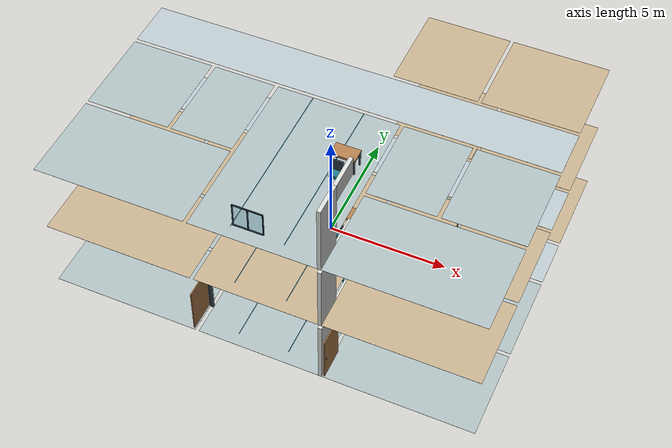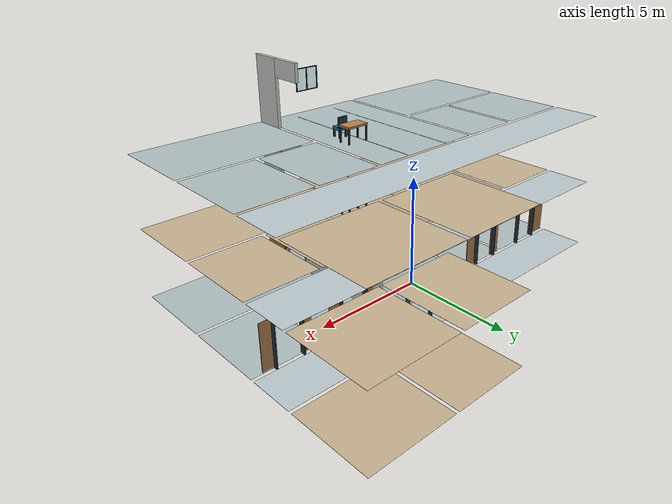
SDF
<sdf version="1.6">
 <world name="three_floor">
  <model name="f1_wall_016">
   <static>true</static>
   <pose>2.6 -6.15 1.5 0 0 0</pose>
   <link name="f1_wall_016_link">
    <collision name="f1_wall_016_collision"><geometry><box><size>0.15 1.3 3</size></box></geometry></collision>
    <visual name="f1_wall_016_visual">
     <geometry><box><size>0.15 1.3 3</size></box></geometry>
     <material><ambient>.84 .85 .83 1</ambient><diffuse>.84 .85 .83 1</diffuse></material>
    </visual>
   </link>
  </model>
  <model name="f1_wall_017">
   <static>true</static>
   <pose>2.6 -1.65 1.5 0 0 0</pose>
   <link name="f1_wall_017_link">
    <collision name="f1_wall_017_collision"><geometry><box><size>0.15 4.9 3</size></box></geometry></collision>
    <visual name="f1_wall_017_visual">
     <geometry><box><size>0.15 4.9 3</size></box></geometry>
     <material><ambient>.84 .85 .83 1</ambient><diffuse>.84 .85 .83 1</diffuse></material>
    </visual>
   </link>
  </model>
  <model name="f1_lintel_shared_east">
   <static>true</static>
   <pose>2.6 -4.8 2.6 0 0 0</pose>
   <link name="f1_lintel_shared_east_link">
    <collision name="f1_lintel_shared_east_collision">
     <geometry><box><size>0.15 1.4 0.8</size></box></geometry>
    </collision>
    <visual name="f1_lintel_shared_east_visual">
     <geometry><box><size>0.15 1.4 0.8</size></box></geometry>
     <material><ambient>.84 .85 .83 1</ambient><diffuse>.84 .85 .83 1</diffuse></material>
    </visual>
   </link>
  </model>
  <model name="f2_wall_016">
   <static>true</static>
   <pose>2.6 -6.15 4.7 0 0 0</pose>
   <link name="f2_wall_016_link">
    <collision name="f2_wall_016_collision"><geometry><box><size>0.15 1.3 3</size></box></geometry></collision>
    <visual name="f2_wall_016_visual">
     <geometry><box><size>0.15 1.3 3</size></box></geometry>
     <material><ambient>.84 .85 .83 1</ambient><diffuse>.84 .85 .83 1</diffuse></material>
    </visual>
   </link>
  </model>
  <model name="f2_lintel_shared_east">
   <static>true</static>
   <pose>2.6 -4.8 5.8 0 0 0</pose>
   <link name="f2_lintel_shared_east_link">
    <collision name="f2_lintel_shared_east_collision">
     <geometry><box><size>0.15 1.4 0.8</size></box></geometry>
    </collision>
    <visual name="f2_lintel_shared_east_visual">
     <geometry><box><size>0.15 1.4 0.8</size></box></geometry>
     <material><ambient>.84 .85 .83 1</ambient><diffuse>.84 .85 .83 1</diffuse></material>
    </visual>
   </link>
  </model>
  <model name="f3_wall_016">
   <static>true</static>
   <pose>2.6 -6.15 7.9 0 0 0</pose>
   <link name="f3_wall_016_link">
    <collision name="f3_wall_016_collision"><geometry><box><size>0.15 1.3 3</size></box></geometry></collision>
    <visual name="f3_wall_016_visual">
     <geometry><box><size>0.15 1.3 3</size></box></geometry>
     <material><ambient>.84 .85 .83 1</ambient><diffuse>.84 .85 .83 1</diffuse></material>
    </visual>
   </link>
  </model>
  <model name="f3_lintel_shared_east">
   <static>true</static>
   <pose>2.6 -4.8 9 0 0 0</pose>
   <link name="f3_lintel_shared_east_link">
    <collision name="f3_lintel_shared_east_collision">
     <geometry><box><size>0.15 1.4 0.8</size></box></geometry>
    </collision>
    <visual name="f3_lintel_shared_east_visual">
     <geometry><box><size>0.15 1.4 0.8</size></box></geometry>
     <material><ambient>.84 .85 .83 1</ambient><diffuse>.84 .85 .83 1</diffuse></material>
    </visual>
   </link>
  </model>
  <model name="f3_s2_window_33">
   <static>true</static>
   <pose>0 -6.9 7.875 0 0 0</pose>
   <link name="f3_s2_window_33_link">
    <collision name="f3_s2_window_33_link_glass_collision">
     <geometry><box><size>1.2 0.045 1.05</size></box></geometry>
    </collision>
    <visual name="f3_s2_window_33_link_glass_visual">
     <geometry><box><size>1.2 0.045 1.05</size></box></geometry>
     <material><ambient>0.44 0.76 0.83 1</ambient><diffuse>0.44 0.76 0.83 1</diffuse></material>
     <transparency>0.65</transparency>
    </visual>
    <collision name="f3_s2_window_33_link_mullion_-0.58_collision">
     <pose>-0.58 0 0 0 0 0</pose>
     <geometry><box><size>0.035 0.045 1.05</size></box></geometry>
    </collision>
    <visual name="f3_s2_window_33_link_mullion_-0.58_visual">
     <pose>-0.58 0 0 0 0 0</pose>
     <geometry><box><size>0.035 0.045 1.05</size></box></geometry>
     <material><ambient>0.15 0.2 0.24 1</ambient><diffuse>0.15 0.2 0.24 1</diffuse></material>
    </visual>
    <collision name="f3_s2_window_33_link_mullion_0.58_collision">
     <pose>0.58 0 0 0 0 0</pose>
     <geometry><box><size>0.035 0.045 1.05</size></box></geometry>
    </collision>
    <visual name="f3_s2_window_33_link_mullion_0.58_visual">
     <pose>0.58 0 0 0 0 0</pose>
     <geometry><box><size>0.035 0.045 1.05</size></box></geometry>
     <material><ambient>0.15 0.2 0.24 1</ambient><diffuse>0.15 0.2 0.24 1</diffuse></material>
    </visual>
    <collision name="f3_s2_window_33_link_mullion_0_collision">
     <geometry><box><size>0.035 0.045 1.05</size></box></geometry>
    </collision>
    <visual name="f3_s2_window_33_link_mullion_0_visual">
     <geometry><box><size>0.035 0.045 1.05</size></box></geometry>
     <material><ambient>0.15 0.2 0.24 1</ambient><diffuse>0.15 0.2 0.24 1</diffuse></material>
    </visual>
    <collision name="f3_s2_window_33_link_frame_-0.51_collision">
     <pose>0 0 -0.51 0 0 0</pose>
     <geometry><box><size>1.2 0.045 0.03</size></box></geometry>
    </collision>
    <visual name="f3_s2_window_33_link_frame_-0.51_visual">
     <pose>0 0 -0.51 0 0 0</pose>
     <geometry><box><size>1.2 0.045 0.03</size></box></geometry>
     <material><ambient>0.15 0.2 0.24 1</ambient><diffuse>0.15 0.2 0.24 1</diffuse></material>
    </visual>
    <collision name="f3_s2_window_33_link_frame_0.51_collision">
     <pose>0 0 0.51 0 0 0</pose>
     <geometry><box><size>1.2 0.045 0.03</size></box></geometry>
    </collision>
    <visual name="f3_s2_window_33_link_frame_0.51_visual">
     <pose>0 0 0.51 0 0 0</pose>
     <geometry><box><size>1.2 0.045 0.03</size></box></geometry>
     <material><ambient>0.15 0.2 0.24 1</ambient><diffuse>0.15 0.2 0.24 1</diffuse></material>
    </visual>
   </link>
  </model>
  <model name="f1_s2_finishes">
   <static>true</static>
   <link name="f1_s2_finishes_link">
    <visual name="f1_s2_finishes_link_shared_visual">
     <pose>0 -3.0375 0.011 0 0 0</pose>
     <geometry><box><size>5.05 7.525 0.002</size></box></geometry>
     <material><ambient>0.67 0.73 0.74 1</ambient><diffuse>0.67 0.73 0.74 1</diffuse></material>
    </visual>
    <visual name="f1_s2_finishes_link_sw_visual">
     <pose>-5.7375 -4.9375 0.011 0 0 0</pose>
     <geometry><box><size>6.125 3.725 0.002</size></box></geometry>
     <material><ambient>0.67 0.73 0.74 1</ambient><diffuse>0.67 0.73 0.74 1</diffuse></material>
    </visual>
    <visual name="f1_s2_finishes_link_se_visual">
     <pose>5.7375 -4.9375 0.011 0 0 0</pose>
     <geometry><box><size>6.125 3.725 0.002</size></box></geometry>
     <material><ambient>0.67 0.73 0.74 1</ambient><diffuse>0.67 0.73 0.74 1</diffuse></material>
    </visual>
    <visual name="f1_s2_finishes_link_wn1_visual">
     <pose>-7.0875 -1.1 0.011 0 0 0</pose>
     <geometry><box><size>3.425 3.65 0.002</size></box></geometry>
     <material><ambient>0.67 0.73 0.74 1</ambient><diffuse>0.67 0.73 0.74 1</diffuse></material>
    </visual>
    <visual name="f1_s2_finishes_link_wn2_visual">
     <pose>-3.95 -1.1 0.011 0 0 0</pose>
     <geometry><box><size>2.55 3.65 0.002</size></box></geometry>
     <material><ambient>0.67 0.73 0.74 1</ambient><diffuse>0.67 0.73 0.74 1</diffuse></material>
    </visual>
    <visual name="f1_s2_finishes_link_en1_visual">
     <pose>4.05 -1.1 0.011 0 0 0</pose>
     <geometry><box><size>2.75 3.65 0.002</size></box></geometry>
     <material><ambient>0.67 0.73 0.74 1</ambient><diffuse>0.67 0.73 0.74 1</diffuse></material>
    </visual>
    <visual name="f1_s2_finishes_link_en2_visual">
     <pose>7.1875 -1.1 0.011 0 0 0</pose>
     <geometry><box><size>3.225 3.65 0.002</size></box></geometry>
     <material><ambient>0.67 0.73 0.74 1</ambient><diffuse>0.67 0.73 0.74 1</diffuse></material>
    </visual>
    <visual name="f1_s2_finishes_link_nn1_visual">
     <pose>3 4.9375 0.011 0 0 0</pose>
     <geometry><box><size>3.45 3.725 0.002</size></box></geometry>
     <material><ambient>0.76 0.68 0.55 1</ambient><diffuse>0.76 0.68 0.55 1</diffuse></material>
    </visual>
    <visual name="f1_s2_finishes_link_nn2_visual">
     <pose>6.8375 4.9375 0.011 0 0 0</pose>
     <geometry><box><size>3.925 3.725 0.002</size></box></geometry>
     <material><ambient>0.76 0.68 0.55 1</ambient><diffuse>0.76 0.68 0.55 1</diffuse></material>
    </visual>
    <visual name="f1_s2_finishes_link_corridor_visual">
     <pose>0 1.9 0.011 0 0 0</pose>
     <geometry><box><size>17.6 2.05 0.002</size></box></geometry>
     <material><ambient>0.72 0.77 0.79 1</ambient><diffuse>0.72 0.77 0.79 1</diffuse></material>
    </visual>
    <visual name="f1_s2_finishes_link_aisle_-1.05_visual">
     <pose>-1.05 -2.8 0.013 0 0 0</pose>
     <geometry><box><size>0.025 7 0.002</size></box></geometry>
     <material><ambient>0.12 0.46 0.52 1</ambient><diffuse>0.12 0.46 0.52 1</diffuse></material>
    </visual>
    <visual name="f1_s2_finishes_link_aisle_1.05_visual">
     <pose>1.05 -2.8 0.013 0 0 0</pose>
     <geometry><box><size>0.025 7 0.002</size></box></geometry>
     <material><ambient>0.12 0.46 0.52 1</ambient><diffuse>0.12 0.46 0.52 1</diffuse></material>
    </visual>
   </link>
  </model>
  <model name="f2_s2_finishes">
   <static>true</static>
   <link name="f2_s2_finishes_link">
    <visual name="f2_s2_finishes_link_shared_visual">
     <pose>0 -3.0375 3.211 0 0 0</pose>
     <geometry><box><size>5.05 7.525 0.002</size></box></geometry>
     <material><ambient>0.76 0.68 0.55 1</ambient><diffuse>0.76 0.68 0.55 1</diffuse></material>
    </visual>
    <visual name="f2_s2_finishes_link_sw_visual">
     <pose>-5.7375 -4.9375 3.211 0 0 0</pose>
     <geometry><box><size>6.125 3.725 0.002</size></box></geometry>
     <material><ambient>0.76 0.68 0.55 1</ambient><diffuse>0.76 0.68 0.55 1</diffuse></material>
    </visual>
    <visual name="f2_s2_finishes_link_se_visual">
     <pose>5.7375 -4.9375 3.211 0 0 0</pose>
     <geometry><box><size>6.125 3.725 0.002</size></box></geometry>
     <material><ambient>0.76 0.68 0.55 1</ambient><diffuse>0.76 0.68 0.55 1</diffuse></material>
    </visual>
    <visual name="f2_s2_finishes_link_wn1_visual">
     <pose>-7.0875 -1.1 3.211 0 0 0</pose>
     <geometry><box><size>3.425 3.65 0.002</size></box></geometry>
     <material><ambient>0.76 0.68 0.55 1</ambient><diffuse>0.76 0.68 0.55 1</diffuse></material>
    </visual>
    <visual name="f2_s2_finishes_link_wn2_visual">
     <pose>-3.95 -1.1 3.211 0 0 0</pose>
     <geometry><box><size>2.55 3.65 0.002</size></box></geometry>
     <material><ambient>0.76 0.68 0.55 1</ambient><diffuse>0.76 0.68 0.55 1</diffuse></material>
    </visual>
    <visual name="f2_s2_finishes_link_en1_visual">
     <pose>4.05 -1.1 3.211 0 0 0</pose>
     <geometry><box><size>2.75 3.65 0.002</size></box></geometry>
     <material><ambient>0.76 0.68 0.55 1</ambient><diffuse>0.76 0.68 0.55 1</diffuse></material>
    </visual>
    <visual name="f2_s2_finishes_link_en2_visual">
     <pose>7.1875 -1.1 3.211 0 0 0</pose>
     <geometry><box><size>3.225 3.65 0.002</size></box></geometry>
     <material><ambient>0.76 0.68 0.55 1</ambient><diffuse>0.76 0.68 0.55 1</diffuse></material>
    </visual>
    <visual name="f2_s2_finishes_link_nn1_visual">
     <pose>3 4.9375 3.211 0 0 0</pose>
     <geometry><box><size>3.45 3.725 0.002</size></box></geometry>
     <material><ambient>0.76 0.68 0.55 1</ambient><diffuse>0.76 0.68 0.55 1</diffuse></material>
    </visual>
    <visual name="f2_s2_finishes_link_nn2_visual">
     <pose>6.8375 4.9375 3.211 0 0 0</pose>
     <geometry><box><size>3.925 3.725 0.002</size></box></geometry>
     <material><ambient>0.76 0.68 0.55 1</ambient><diffuse>0.76 0.68 0.55 1</diffuse></material>
    </visual>
    <visual name="f2_s2_finishes_link_corridor_visual">
     <pose>0 1.9 3.211 0 0 0</pose>
     <geometry><box><size>17.6 2.05 0.002</size></box></geometry>
     <material><ambient>0.72 0.77 0.79 1</ambient><diffuse>0.72 0.77 0.79 1</diffuse></material>
    </visual>
    <visual name="f2_s2_finishes_link_aisle_-1.05_visual">
     <pose>-1.05 -2.8 3.213 0 0 0</pose>
     <geometry><box><size>0.025 7 0.002</size></box></geometry>
     <material><ambient>0.12 0.46 0.52 1</ambient><diffuse>0.12 0.46 0.52 1</diffuse></material>
    </visual>
    <visual name="f2_s2_finishes_link_aisle_1.05_visual">
     <pose>1.05 -2.8 3.213 0 0 0</pose>
     <geometry><box><size>0.025 7 0.002</size></box></geometry>
     <material><ambient>0.12 0.46 0.52 1</ambient><diffuse>0.12 0.46 0.52 1</diffuse></material>
    </visual>
   </link>
  </model>
  <model name="f3_s2_finishes">
   <static>true</static>
   <link name="f3_s2_finishes_link">
    <visual name="f3_s2_finishes_link_shared_visual">
     <pose>0 -3.0375 6.411 0 0 0</pose>
     <geometry><box><size>5.05 7.525 0.002</size></box></geometry>
     <material><ambient>0.67 0.73 0.74 1</ambient><diffuse>0.67 0.73 0.74 1</diffuse></material>
    </visual>
    <visual name="f3_s2_finishes_link_sw_visual">
     <pose>-5.7375 -4.9375 6.411 0 0 0</pose>
     <geometry><box><size>6.125 3.725 0.002</size></box></geometry>
     <material><ambient>0.67 0.73 0.74 1</ambient><diffuse>0.67 0.73 0.74 1</diffuse></material>
    </visual>
    <visual name="f3_s2_finishes_link_se_visual">
     <pose>5.7375 -4.9375 6.411 0 0 0</pose>
     <geometry><box><size>6.125 3.725 0.002</size></box></geometry>
     <material><ambient>0.67 0.73 0.74 1</ambient><diffuse>0.67 0.73 0.74 1</diffuse></material>
    </visual>
    <visual name="f3_s2_finishes_link_wn1_visual">
     <pose>-7.0875 -1.1 6.411 0 0 0</pose>
     <geometry><box><size>3.425 3.65 0.002</size></box></geometry>
     <material><ambient>0.67 0.73 0.74 1</ambient><diffuse>0.67 0.73 0.74 1</diffuse></material>
    </visual>
    <visual name="f3_s2_finishes_link_wn2_visual">
     <pose>-3.95 -1.1 6.411 0 0 0</pose>
     <geometry><box><size>2.55 3.65 0.002</size></box></geometry>
     <material><ambient>0.67 0.73 0.74 1</ambient><diffuse>0.67 0.73 0.74 1</diffuse></material>
    </visual>
    <visual name="f3_s2_finishes_link_en1_visual">
     <pose>4.05 -1.1 6.411 0 0 0</pose>
     <geometry><box><size>2.75 3.65 0.002</size></box></geometry>
     <material><ambient>0.67 0.73 0.74 1</ambient><diffuse>0.67 0.73 0.74 1</diffuse></material>
    </visual>
    <visual name="f3_s2_finishes_link_en2_visual">
     <pose>7.1875 -1.1 6.411 0 0 0</pose>
     <geometry><box><size>3.225 3.65 0.002</size></box></geometry>
     <material><ambient>0.67 0.73 0.74 1</ambient><diffuse>0.67 0.73 0.74 1</diffuse></material>
    </visual>
    <visual name="f3_s2_finishes_link_nn1_visual">
     <pose>3 4.9375 6.411 0 0 0</pose>
     <geometry><box><size>3.45 3.725 0.002</size></box></geometry>
     <material><ambient>0.76 0.68 0.55 1</ambient><diffuse>0.76 0.68 0.55 1</diffuse></material>
    </visual>
    <visual name="f3_s2_finishes_link_nn2_visual">
     <pose>6.8375 4.9375 6.411 0 0 0</pose>
     <geometry><box><size>3.925 3.725 0.002</size></box></geometry>
     <material><ambient>0.76 0.68 0.55 1</ambient><diffuse>0.76 0.68 0.55 1</diffuse></material>
    </visual>
    <visual name="f3_s2_finishes_link_corridor_visual">
     <pose>0 1.9 6.411 0 0 0</pose>
     <geometry><box><size>17.6 2.05 0.002</size></box></geometry>
     <material><ambient>0.72 0.77 0.79 1</ambient><diffuse>0.72 0.77 0.79 1</diffuse></material>
    </visual>
    <visual name="f3_s2_finishes_link_aisle_-1.05_visual">
     <pose>-1.05 -2.8 6.413 0 0 0</pose>
     <geometry><box><size>0.025 7 0.002</size></box></geometry>
     <material><ambient>0.12 0.46 0.52 1</ambient><diffuse>0.12 0.46 0.52 1</diffuse></material>
    </visual>
    <visual name="f3_s2_finishes_link_aisle_1.05_visual">
     <pose>1.05 -2.8 6.413 0 0 0</pose>
     <geometry><box><size>0.025 7 0.002</size></box></geometry>
     <material><ambient>0.12 0.46 0.52 1</ambient><diffuse>0.12 0.46 0.52 1</diffuse></material>
    </visual>
   </link>
  </model>
  <model name="f1_s2_door_sw">
   <static>true</static>
   <link name="f1_s2_door_sw_link">
    <collision name="f1_s2_door_sw_link_jamb_-1_collision">
     <pose>-2.6 -5.525 1.08 0 0 0</pose>
     <geometry><box><size>0.18 0.05 2.16</size></box></geometry>
    </collision>
    <visual name="f1_s2_door_sw_link_jamb_-1_visual">
     <pose>-2.6 -5.525 1.08 0 0 0</pose>
     <geometry><box><size>0.18 0.05 2.16</size></box></geometry>
     <material><ambient>0.15 0.2 0.24 1</ambient><diffuse>0.15 0.2 0.24 1</diffuse></material>
    </visual>
    <collision name="f1_s2_door_sw_link_jamb_1_collision">
     <pose>-2.6 -4.075 1.08 0 0 0</pose>
     <geometry><box><size>0.18 0.05 2.16</size></box></geometry>
    </collision>
    <visual name="f1_s2_door_sw_link_jamb_1_visual">
     <pose>-2.6 -4.075 1.08 0 0 0</pose>
     <geometry><box><size>0.18 0.05 2.16</size></box></geometry>
     <material><ambient>0.15 0.2 0.24 1</ambient><diffuse>0.15 0.2 0.24 1</diffuse></material>
    </visual>
    <collision name="f1_s2_door_sw_link_header_collision">
     <pose>-2.6 -4.8 2.18 0 0 0</pose>
     <geometry><box><size>0.18 1.5 0.04</size></box></geometry>
    </collision>
    <visual name="f1_s2_door_sw_link_header_visual">
     <pose>-2.6 -4.8 2.18 0 0 0</pose>
     <geometry><box><size>0.18 1.5 0.04</size></box></geometry>
     <material><ambient>0.15 0.2 0.24 1</ambient><diffuse>0.15 0.2 0.24 1</diffuse></material>
    </visual>
    <collision name="f1_s2_door_sw_link_open_leaf_collision">
     <pose>-2.75 -6.12 1.04 0 0 0</pose>
     <geometry><box><size>0.045 1.24 2.08</size></box></geometry>
    </collision>
    <visual name="f1_s2_door_sw_link_open_leaf_visual">
     <pose>-2.75 -6.12 1.04 0 0 0</pose>
     <geometry><box><size>0.045 1.24 2.08</size></box></geometry>
     <material><ambient>0.69 0.49 0.3 1</ambient><diffuse>0.69 0.49 0.3 1</diffuse></material>
    </visual>
    <collision name="f1_s2_door_sw_link_handle_collision">
     <pose>-2.79 -6.62 1 0 0 0</pose>
     <geometry><box><size>0.035 0.08 0.035</size></box></geometry>
    </collision>
    <visual name="f1_s2_door_sw_link_handle_visual">
     <pose>-2.79 -6.62 1 0 0 0</pose>
     <geometry><box><size>0.035 0.08 0.035</size></box></geometry>
     <material><ambient>0.15 0.2 0.24 1</ambient><diffuse>0.15 0.2 0.24 1</diffuse></material>
    </visual>
   </link>
  </model>
  <model name="f1_s2_door_se">
   <static>true</static>
   <link name="f1_s2_door_se_link">
    <collision name="f1_s2_door_se_link_jamb_-1_collision">
     <pose>2.6 -5.525 1.08 0 0 0</pose>
     <geometry><box><size>0.18 0.05 2.16</size></box></geometry>
    </collision>
    <visual name="f1_s2_door_se_link_jamb_-1_visual">
     <pose>2.6 -5.525 1.08 0 0 0</pose>
     <geometry><box><size>0.18 0.05 2.16</size></box></geometry>
     <material><ambient>0.15 0.2 0.24 1</ambient><diffuse>0.15 0.2 0.24 1</diffuse></material>
    </visual>
    <collision name="f1_s2_door_se_link_jamb_1_collision">
     <pose>2.6 -4.075 1.08 0 0 0</pose>
     <geometry><box><size>0.18 0.05 2.16</size></box></geometry>
    </collision>
    <visual name="f1_s2_door_se_link_jamb_1_visual">
     <pose>2.6 -4.075 1.08 0 0 0</pose>
     <geometry><box><size>0.18 0.05 2.16</size></box></geometry>
     <material><ambient>0.15 0.2 0.24 1</ambient><diffuse>0.15 0.2 0.24 1</diffuse></material>
    </visual>
    <collision name="f1_s2_door_se_link_header_collision">
     <pose>2.6 -4.8 2.18 0 0 0</pose>
     <geometry><box><size>0.18 1.5 0.04</size></box></geometry>
    </collision>
    <visual name="f1_s2_door_se_link_header_visual">
     <pose>2.6 -4.8 2.18 0 0 0</pose>
     <geometry><box><size>0.18 1.5 0.04</size></box></geometry>
     <material><ambient>0.15 0.2 0.24 1</ambient><diffuse>0.15 0.2 0.24 1</diffuse></material>
    </visual>
    <collision name="f1_s2_door_se_link_open_leaf_collision">
     <pose>2.75 -6.12 1.04 0 0 0</pose>
     <geometry><box><size>0.045 1.24 2.08</size></box></geometry>
    </collision>
    <visual name="f1_s2_door_se_link_open_leaf_visual">
     <pose>2.75 -6.12 1.04 0 0 0</pose>
     <geometry><box><size>0.045 1.24 2.08</size></box></geometry>
     <material><ambient>0.69 0.49 0.3 1</ambient><diffuse>0.69 0.49 0.3 1</diffuse></material>
    </visual>
    <collision name="f1_s2_door_se_link_handle_collision">
     <pose>2.79 -6.62 1 0 0 0</pose>
     <geometry><box><size>0.035 0.08 0.035</size></box></geometry>
    </collision>
    <visual name="f1_s2_door_se_link_handle_visual">
     <pose>2.79 -6.62 1 0 0 0</pose>
     <geometry><box><size>0.035 0.08 0.035</size></box></geometry>
     <material><ambient>0.15 0.2 0.24 1</ambient><diffuse>0.15 0.2 0.24 1</diffuse></material>
    </visual>
   </link>
  </model>
  <model name="f1_s2_door_wn1">
   <static>true</static>
   <link name="f1_s2_door_wn1_link">
    <collision name="f1_s2_door_wn1_link_jamb_-1_collision">
     <pose>-7.775 0.8 1.08 0 0 0</pose>
     <geometry><box><size>0.05 0.18 2.16</size></box></geometry>
    </collision>
    <visual name="f1_s2_door_wn1_link_jamb_-1_visual">
     <pose>-7.775 0.8 1.08 0 0 0</pose>
     <geometry><box><size>0.05 0.18 2.16</size></box></geometry>
     <material><ambient>0.15 0.2 0.24 1</ambient><diffuse>0.15 0.2 0.24 1</diffuse></material>
    </visual>
    <collision name="f1_s2_door_wn1_link_jamb_1_collision">
     <pose>-6.525 0.8 1.08 0 0 0</pose>
     <geometry><box><size>0.05 0.18 2.16</size></box></geometry>
    </collision>
    <visual name="f1_s2_door_wn1_link_jamb_1_visual">
     <pose>-6.525 0.8 1.08 0 0 0</pose>
     <geometry><box><size>0.05 0.18 2.16</size></box></geometry>
     <material><ambient>0.15 0.2 0.24 1</ambient><diffuse>0.15 0.2 0.24 1</diffuse></material>
    </visual>
    <collision name="f1_s2_door_wn1_link_header_collision">
     <pose>-7.15 0.8 2.18 0 0 0</pose>
     <geometry><box><size>1.3 0.18 0.04</size></box></geometry>
    </collision>
    <visual name="f1_s2_door_wn1_link_header_visual">
     <pose>-7.15 0.8 2.18 0 0 0</pose>
     <geometry><box><size>1.3 0.18 0.04</size></box></geometry>
     <material><ambient>0.15 0.2 0.24 1</ambient><diffuse>0.15 0.2 0.24 1</diffuse></material>
    </visual>
    <collision name="f1_s2_door_wn1_link_open_leaf_collision">
     <pose>-8.27 0.65 1.04 0 0 0</pose>
     <geometry><box><size>1.04 0.045 2.08</size></box></geometry>
    </collision>
    <visual name="f1_s2_door_wn1_link_open_leaf_visual">
     <pose>-8.27 0.65 1.04 0 0 0</pose>
     <geometry><box><size>1.04 0.045 2.08</size></box></geometry>
     <material><ambient>0.69 0.49 0.3 1</ambient><diffuse>0.69 0.49 0.3 1</diffuse></material>
    </visual>
    <collision name="f1_s2_door_wn1_link_handle_collision">
     <pose>-8.67 0.61 1 0 0 0</pose>
     <geometry><box><size>0.08 0.035 0.035</size></box></geometry>
    </collision>
    <visual name="f1_s2_door_wn1_link_handle_visual">
     <pose>-8.67 0.61 1 0 0 0</pose>
     <geometry><box><size>0.08 0.035 0.035</size></box></geometry>
     <material><ambient>0.15 0.2 0.24 1</ambient><diffuse>0.15 0.2 0.24 1</diffuse></material>
    </visual>
   </link>
  </model>
  <model name="f1_s2_door_wn2">
   <static>true</static>
   <link name="f1_s2_door_wn2_link">
    <collision name="f1_s2_door_wn2_link_jamb_-1_collision">
     <pose>-4.675 0.8 1.08 0 0 0</pose>
     <geometry><box><size>0.05 0.18 2.16</size></box></geometry>
    </collision>
    <visual name="f1_s2_door_wn2_link_jamb_-1_visual">
     <pose>-4.675 0.8 1.08 0 0 0</pose>
     <geometry><box><size>0.05 0.18 2.16</size></box></geometry>
     <material><ambient>0.15 0.2 0.24 1</ambient><diffuse>0.15 0.2 0.24 1</diffuse></material>
    </visual>
    <collision name="f1_s2_door_wn2_link_jamb_1_collision">
     <pose>-3.425 0.8 1.08 0 0 0</pose>
     <geometry><box><size>0.05 0.18 2.16</size></box></geometry>
    </collision>
    <visual name="f1_s2_door_wn2_link_jamb_1_visual">
     <pose>-3.425 0.8 1.08 0 0 0</pose>
     <geometry><box><size>0.05 0.18 2.16</size></box></geometry>
     <material><ambient>0.15 0.2 0.24 1</ambient><diffuse>0.15 0.2 0.24 1</diffuse></material>
    </visual>
    <collision name="f1_s2_door_wn2_link_header_collision">
     <pose>-4.05 0.8 2.18 0 0 0</pose>
     <geometry><box><size>1.3 0.18 0.04</size></box></geometry>
    </collision>
    <visual name="f1_s2_door_wn2_link_header_visual">
     <pose>-4.05 0.8 2.18 0 0 0</pose>
     <geometry><box><size>1.3 0.18 0.04</size></box></geometry>
     <material><ambient>0.15 0.2 0.24 1</ambient><diffuse>0.15 0.2 0.24 1</diffuse></material>
    </visual>
    <collision name="f1_s2_door_wn2_link_open_leaf_-1_collision">
     <pose>-4.91 0.65 1.04 0 0 0</pose>
     <geometry><box><size>0.52 0.045 2.08</size></box></geometry>
    </collision>
    <visual name="f1_s2_door_wn2_link_open_leaf_-1_visual">
     <pose>-4.91 0.65 1.04 0 0 0</pose>
     <geometry><box><size>0.52 0.045 2.08</size></box></geometry>
     <material><ambient>0.69 0.49 0.3 1</ambient><diffuse>0.69 0.49 0.3 1</diffuse></material>
    </visual>
    <collision name="f1_s2_door_wn2_link_handle_-1_collision">
     <pose>-5.07 0.61 1 0 0 0</pose>
     <geometry><box><size>0.06 0.035 0.035</size></box></geometry>
    </collision>
    <visual name="f1_s2_door_wn2_link_handle_-1_visual">
     <pose>-5.07 0.61 1 0 0 0</pose>
     <geometry><box><size>0.06 0.035 0.035</size></box></geometry>
     <material><ambient>0.15 0.2 0.24 1</ambient><diffuse>0.15 0.2 0.24 1</diffuse></material>
    </visual>
    <collision name="f1_s2_door_wn2_link_open_leaf_1_collision">
     <pose>-3.19 0.65 1.04 0 0 0</pose>
     <geometry><box><size>0.52 0.045 2.08</size></box></geometry>
    </collision>
    <visual name="f1_s2_door_wn2_link_open_leaf_1_visual">
     <pose>-3.19 0.65 1.04 0 0 0</pose>
     <geometry><box><size>0.52 0.045 2.08</size></box></geometry>
     <material><ambient>0.69 0.49 0.3 1</ambient><diffuse>0.69 0.49 0.3 1</diffuse></material>
    </visual>
    <collision name="f1_s2_door_wn2_link_handle_1_collision">
     <pose>-3.03 0.61 1 0 0 0</pose>
     <geometry><box><size>0.06 0.035 0.035</size></box></geometry>
    </collision>
    <visual name="f1_s2_door_wn2_link_handle_1_visual">
     <pose>-3.03 0.61 1 0 0 0</pose>
     <geometry><box><size>0.06 0.035 0.035</size></box></geometry>
     <material><ambient>0.15 0.2 0.24 1</ambient><diffuse>0.15 0.2 0.24 1</diffuse></material>
    </visual>
   </link>
  </model>
  <model name="f1_s2_door_en1">
   <static>true</static>
   <link name="f1_s2_door_en1_link">
    <collision name="f1_s2_door_en1_link_jamb_-1_collision">
     <pose>3.425 0.8 1.08 0 0 0</pose>
     <geometry><box><size>0.05 0.18 2.16</size></box></geometry>
    </collision>
    <visual name="f1_s2_door_en1_link_jamb_-1_visual">
     <pose>3.425 0.8 1.08 0 0 0</pose>
     <geometry><box><size>0.05 0.18 2.16</size></box></geometry>
     <material><ambient>0.15 0.2 0.24 1</ambient><diffuse>0.15 0.2 0.24 1</diffuse></material>
    </visual>
    <collision name="f1_s2_door_en1_link_jamb_1_collision">
     <pose>4.675 0.8 1.08 0 0 0</pose>
     <geometry><box><size>0.05 0.18 2.16</size></box></geometry>
    </collision>
    <visual name="f1_s2_door_en1_link_jamb_1_visual">
     <pose>4.675 0.8 1.08 0 0 0</pose>
     <geometry><box><size>0.05 0.18 2.16</size></box></geometry>
     <material><ambient>0.15 0.2 0.24 1</ambient><diffuse>0.15 0.2 0.24 1</diffuse></material>
    </visual>
    <collision name="f1_s2_door_en1_link_header_collision">
     <pose>4.05 0.8 2.18 0 0 0</pose>
     <geometry><box><size>1.3 0.18 0.04</size></box></geometry>
    </collision>
    <visual name="f1_s2_door_en1_link_header_visual">
     <pose>4.05 0.8 2.18 0 0 0</pose>
     <geometry><box><size>1.3 0.18 0.04</size></box></geometry>
     <material><ambient>0.15 0.2 0.24 1</ambient><diffuse>0.15 0.2 0.24 1</diffuse></material>
    </visual>
    <collision name="f1_s2_door_en1_link_open_leaf_-1_collision">
     <pose>3.19 0.65 1.04 0 0 0</pose>
     <geometry><box><size>0.52 0.045 2.08</size></box></geometry>
    </collision>
    <visual name="f1_s2_door_en1_link_open_leaf_-1_visual">
     <pose>3.19 0.65 1.04 0 0 0</pose>
     <geometry><box><size>0.52 0.045 2.08</size></box></geometry>
     <material><ambient>0.69 0.49 0.3 1</ambient><diffuse>0.69 0.49 0.3 1</diffuse></material>
    </visual>
    <collision name="f1_s2_door_en1_link_handle_-1_collision">
     <pose>3.03 0.61 1 0 0 0</pose>
     <geometry><box><size>0.06 0.035 0.035</size></box></geometry>
    </collision>
    <visual name="f1_s2_door_en1_link_handle_-1_visual">
     <pose>3.03 0.61 1 0 0 0</pose>
     <geometry><box><size>0.06 0.035 0.035</size></box></geometry>
     <material><ambient>0.15 0.2 0.24 1</ambient><diffuse>0.15 0.2 0.24 1</diffuse></material>
    </visual>
    <collision name="f1_s2_door_en1_link_open_leaf_1_collision">
     <pose>4.91 0.65 1.04 0 0 0</pose>
     <geometry><box><size>0.52 0.045 2.08</size></box></geometry>
    </collision>
    <visual name="f1_s2_door_en1_link_open_leaf_1_visual">
     <pose>4.91 0.65 1.04 0 0 0</pose>
     <geometry><box><size>0.52 0.045 2.08</size></box></geometry>
     <material><ambient>0.69 0.49 0.3 1</ambient><diffuse>0.69 0.49 0.3 1</diffuse></material>
    </visual>
    <collision name="f1_s2_door_en1_link_handle_1_collision">
     <pose>5.07 0.61 1 0 0 0</pose>
     <geometry><box><size>0.06 0.035 0.035</size></box></geometry>
    </collision>
    <visual name="f1_s2_door_en1_link_handle_1_visual">
     <pose>5.07 0.61 1 0 0 0</pose>
     <geometry><box><size>0.06 0.035 0.035</size></box></geometry>
     <material><ambient>0.15 0.2 0.24 1</ambient><diffuse>0.15 0.2 0.24 1</diffuse></material>
    </visual>
   </link>
  </model>
  <model name="f1_s2_door_en2">
   <static>true</static>
   <link name="f1_s2_door_en2_link">
    <collision name="f1_s2_door_en2_link_jamb_-1_collision">
     <pose>6.525 0.8 1.08 0 0 0</pose>
     <geometry><box><size>0.05 0.18 2.16</size></box></geometry>
    </collision>
    <visual name="f1_s2_door_en2_link_jamb_-1_visual">
     <pose>6.525 0.8 1.08 0 0 0</pose>
     <geometry><box><size>0.05 0.18 2.16</size></box></geometry>
     <material><ambient>0.15 0.2 0.24 1</ambient><diffuse>0.15 0.2 0.24 1</diffuse></material>
    </visual>
    <collision name="f1_s2_door_en2_link_jamb_1_collision">
     <pose>7.775 0.8 1.08 0 0 0</pose>
     <geometry><box><size>0.05 0.18 2.16</size></box></geometry>
    </collision>
    <visual name="f1_s2_door_en2_link_jamb_1_visual">
     <pose>7.775 0.8 1.08 0 0 0</pose>
     <geometry><box><size>0.05 0.18 2.16</size></box></geometry>
     <material><ambient>0.15 0.2 0.24 1</ambient><diffuse>0.15 0.2 0.24 1</diffuse></material>
    </visual>
    <collision name="f1_s2_door_en2_link_header_collision">
     <pose>7.15 0.8 2.18 0 0 0</pose>
     <geometry><box><size>1.3 0.18 0.04</size></box></geometry>
    </collision>
    <visual name="f1_s2_door_en2_link_header_visual">
     <pose>7.15 0.8 2.18 0 0 0</pose>
     <geometry><box><size>1.3 0.18 0.04</size></box></geometry>
     <material><ambient>0.15 0.2 0.24 1</ambient><diffuse>0.15 0.2 0.24 1</diffuse></material>
    </visual>
    <collision name="f1_s2_door_en2_link_open_leaf_-1_collision">
     <pose>6.29 0.65 1.04 0 0 0</pose>
     <geometry><box><size>0.52 0.045 2.08</size></box></geometry>
    </collision>
    <visual name="f1_s2_door_en2_link_open_leaf_-1_visual">
     <pose>6.29 0.65 1.04 0 0 0</pose>
     <geometry><box><size>0.52 0.045 2.08</size></box></geometry>
     <material><ambient>0.69 0.49 0.3 1</ambient><diffuse>0.69 0.49 0.3 1</diffuse></material>
    </visual>
    <collision name="f1_s2_door_en2_link_handle_-1_collision">
     <pose>6.13 0.61 1 0 0 0</pose>
     <geometry><box><size>0.06 0.035 0.035</size></box></geometry>
    </collision>
    <visual name="f1_s2_door_en2_link_handle_-1_visual">
     <pose>6.13 0.61 1 0 0 0</pose>
     <geometry><box><size>0.06 0.035 0.035</size></box></geometry>
     <material><ambient>0.15 0.2 0.24 1</ambient><diffuse>0.15 0.2 0.24 1</diffuse></material>
    </visual>
    <collision name="f1_s2_door_en2_link_open_leaf_1_collision">
     <pose>8.01 0.65 1.04 0 0 0</pose>
     <geometry><box><size>0.52 0.045 2.08</size></box></geometry>
    </collision>
    <visual name="f1_s2_door_en2_link_open_leaf_1_visual">
     <pose>8.01 0.65 1.04 0 0 0</pose>
     <geometry><box><size>0.52 0.045 2.08</size></box></geometry>
     <material><ambient>0.69 0.49 0.3 1</ambient><diffuse>0.69 0.49 0.3 1</diffuse></material>
    </visual>
    <collision name="f1_s2_door_en2_link_handle_1_collision">
     <pose>8.17 0.61 1 0 0 0</pose>
     <geometry><box><size>0.06 0.035 0.035</size></box></geometry>
    </collision>
    <visual name="f1_s2_door_en2_link_handle_1_visual">
     <pose>8.17 0.61 1 0 0 0</pose>
     <geometry><box><size>0.06 0.035 0.035</size></box></geometry>
     <material><ambient>0.15 0.2 0.24 1</ambient><diffuse>0.15 0.2 0.24 1</diffuse></material>
    </visual>
   </link>
  </model>
  <model name="f1_s2_door_nn1">
   <static>true</static>
   <link name="f1_s2_door_nn1_link">
    <collision name="f1_s2_door_nn1_link_jamb_-1_collision">
     <pose>2.075 3 1.08 0 0 0</pose>
     <geometry><box><size>0.05 0.18 2.16</size></box></geometry>
    </collision>
    <visual name="f1_s2_door_nn1_link_jamb_-1_visual">
     <pose>2.075 3 1.08 0 0 0</pose>
     <geometry><box><size>0.05 0.18 2.16</size></box></geometry>
     <material><ambient>0.15 0.2 0.24 1</ambient><diffuse>0.15 0.2 0.24 1</diffuse></material>
    </visual>
    <collision name="f1_s2_door_nn1_link_jamb_1_collision">
     <pose>3.325 3 1.08 0 0 0</pose>
     <geometry><box><size>0.05 0.18 2.16</size></box></geometry>
    </collision>
    <visual name="f1_s2_door_nn1_link_jamb_1_visual">
     <pose>3.325 3 1.08 0 0 0</pose>
     <geometry><box><size>0.05 0.18 2.16</size></box></geometry>
     <material><ambient>0.15 0.2 0.24 1</ambient><diffuse>0.15 0.2 0.24 1</diffuse></material>
    </visual>
    <collision name="f1_s2_door_nn1_link_header_collision">
     <pose>2.7 3 2.18 0 0 0</pose>
     <geometry><box><size>1.3 0.18 0.04</size></box></geometry>
    </collision>
    <visual name="f1_s2_door_nn1_link_header_visual">
     <pose>2.7 3 2.18 0 0 0</pose>
     <geometry><box><size>1.3 0.18 0.04</size></box></geometry>
     <material><ambient>0.15 0.2 0.24 1</ambient><diffuse>0.15 0.2 0.24 1</diffuse></material>
    </visual>
    <collision name="f1_s2_door_nn1_link_open_leaf_collision">
     <pose>3.82 3.15 1.04 0 0 0</pose>
     <geometry><box><size>1.04 0.045 2.08</size></box></geometry>
    </collision>
    <visual name="f1_s2_door_nn1_link_open_leaf_visual">
     <pose>3.82 3.15 1.04 0 0 0</pose>
     <geometry><box><size>1.04 0.045 2.08</size></box></geometry>
     <material><ambient>0.44 0.76 0.83 1</ambient><diffuse>0.44 0.76 0.83 1</diffuse></material>
     <transparency>0.65</transparency>
    </visual>
    <collision name="f1_s2_door_nn1_link_handle_collision">
     <pose>4.22 3.19 1 0 0 0</pose>
     <geometry><box><size>0.08 0.035 0.035</size></box></geometry>
    </collision>
    <visual name="f1_s2_door_nn1_link_handle_visual">
     <pose>4.22 3.19 1 0 0 0</pose>
     <geometry><box><size>0.08 0.035 0.035</size></box></geometry>
     <material><ambient>0.15 0.2 0.24 1</ambient><diffuse>0.15 0.2 0.24 1</diffuse></material>
    </visual>
   </link>
  </model>
  <model name="f1_s2_furniture_02_seat">
   <static>true</static>
   <pose>1.65 -2.25 0 0 0 0</pose>
   <link name="f1_s2_furniture_02_seat_link">
    <collision name="f1_s2_furniture_02_seat_link_seat_collision">
     <pose>0 0 0.4 0 0 0</pose>
     <geometry><box><size>0.65 0.65 0.14</size></box></geometry>
    </collision>
    <visual name="f1_s2_furniture_02_seat_link_seat_visual">
     <pose>0 0 0.4 0 0 0</pose>
     <geometry><box><size>0.65 0.65 0.14</size></box></geometry>
     <material><ambient>0.12 0.46 0.52 1</ambient><diffuse>0.12 0.46 0.52 1</diffuse></material>
    </visual>
    <collision name="f1_s2_furniture_02_seat_link_back_collision">
     <pose>0 0.28 0.61 0 0 0</pose>
     <geometry><box><size>0.65 0.09 0.28</size></box></geometry>
    </collision>
    <visual name="f1_s2_furniture_02_seat_link_back_visual">
     <pose>0 0.28 0.61 0 0 0</pose>
     <geometry><box><size>0.65 0.09 0.28</size></box></geometry>
     <material><ambient>0.15 0.2 0.24 1</ambient><diffuse>0.15 0.2 0.24 1</diffuse></material>
    </visual>
    <collision name="f1_s2_furniture_02_seat_link_leg_-0.275_-0.275_collision">
     <pose>-0.275 -0.275 0.165 0 0 0</pose>
     <geometry><box><size>0.07 0.07 0.33</size></box></geometry>
    </collision>
    <visual name="f1_s2_furniture_02_seat_link_leg_-0.275_-0.275_visual">
     <pose>-0.275 -0.275 0.165 0 0 0</pose>
     <geometry><box><size>0.07 0.07 0.33</size></box></geometry>
     <material><ambient>0.15 0.2 0.24 1</ambient><diffuse>0.15 0.2 0.24 1</diffuse></material>
    </visual>
    <collision name="f1_s2_furniture_02_seat_link_leg_-0.275_0.275_collision">
     <pose>-0.275 0.275 0.165 0 0 0</pose>
     <geometry><box><size>0.07 0.07 0.33</size></box></geometry>
    </collision>
    <visual name="f1_s2_furniture_02_seat_link_leg_-0.275_0.275_visual">
     <pose>-0.275 0.275 0.165 0 0 0</pose>
     <geometry><box><size>0.07 0.07 0.33</size></box></geometry>
     <material><ambient>0.15 0.2 0.24 1</ambient><diffuse>0.15 0.2 0.24 1</diffuse></material>
    </visual>
    <collision name="f1_s2_furniture_02_seat_link_leg_0.275_-0.275_collision">
     <pose>0.275 -0.275 0.165 0 0 0</pose>
     <geometry><box><size>0.07 0.07 0.33</size></box></geometry>
    </collision>
    <visual name="f1_s2_furniture_02_seat_link_leg_0.275_-0.275_visual">
     <pose>0.275 -0.275 0.165 0 0 0</pose>
     <geometry><box><size>0.07 0.07 0.33</size></box></geometry>
     <material><ambient>0.15 0.2 0.24 1</ambient><diffuse>0.15 0.2 0.24 1</diffuse></material>
    </visual>
    <collision name="f1_s2_furniture_02_seat_link_leg_0.275_0.275_collision">
     <pose>0.275 0.275 0.165 0 0 0</pose>
     <geometry><box><size>0.07 0.07 0.33</size></box></geometry>
    </collision>
    <visual name="f1_s2_furniture_02_seat_link_leg_0.275_0.275_visual">
     <pose>0.275 0.275 0.165 0 0 0</pose>
     <geometry><box><size>0.07 0.07 0.33</size></box></geometry>
     <material><ambient>0.15 0.2 0.24 1</ambient><diffuse>0.15 0.2 0.24 1</diffuse></material>
    </visual>
   </link>
  </model>
  <model name="f2_s2_furniture_25_desk">
   <static>true</static>
   <pose>1.48 -2.05 3.2 0 0 0</pose>
   <link name="f2_s2_furniture_25_desk_link">
    <collision name="f2_s2_furniture_25_desk_link_top_collision">
     <pose>0 0 0.695 0 0 0</pose>
     <geometry><box><size>1 0.6 0.09</size></box></geometry>
    </collision>
    <visual name="f2_s2_furniture_25_desk_link_top_visual">
     <pose>0 0 0.695 0 0 0</pose>
     <geometry><box><size>1 0.6 0.09</size></box></geometry>
     <material><ambient>0.69 0.49 0.3 1</ambient><diffuse>0.69 0.49 0.3 1</diffuse></material>
    </visual>
    <collision name="f2_s2_furniture_25_desk_link_leg_-0.455_-0.255_collision">
     <pose>-0.455 -0.255 0.325 0 0 0</pose>
     <geometry><box><size>0.06 0.06 0.65</size></box></geometry>
    </collision>
    <visual name="f2_s2_furniture_25_desk_link_leg_-0.455_-0.255_visual">
     <pose>-0.455 -0.255 0.325 0 0 0</pose>
     <geometry><box><size>0.06 0.06 0.65</size></box></geometry>
     <material><ambient>0.15 0.2 0.24 1</ambient><diffuse>0.15 0.2 0.24 1</diffuse></material>
    </visual>
    <collision name="f2_s2_furniture_25_desk_link_leg_-0.455_0.255_collision">
     <pose>-0.455 0.255 0.325 0 0 0</pose>
     <geometry><box><size>0.06 0.06 0.65</size></box></geometry>
    </collision>
    <visual name="f2_s2_furniture_25_desk_link_leg_-0.455_0.255_visual">
     <pose>-0.455 0.255 0.325 0 0 0</pose>
     <geometry><box><size>0.06 0.06 0.65</size></box></geometry>
     <material><ambient>0.15 0.2 0.24 1</ambient><diffuse>0.15 0.2 0.24 1</diffuse></material>
    </visual>
    <collision name="f2_s2_furniture_25_desk_link_leg_0.455_-0.255_collision">
     <pose>0.455 -0.255 0.325 0 0 0</pose>
     <geometry><box><size>0.06 0.06 0.65</size></box></geometry>
    </collision>
    <visual name="f2_s2_furniture_25_desk_link_leg_0.455_-0.255_visual">
     <pose>0.455 -0.255 0.325 0 0 0</pose>
     <geometry><box><size>0.06 0.06 0.65</size></box></geometry>
     <material><ambient>0.15 0.2 0.24 1</ambient><diffuse>0.15 0.2 0.24 1</diffuse></material>
    </visual>
    <collision name="f2_s2_furniture_25_desk_link_leg_0.455_0.255_collision">
     <pose>0.455 0.255 0.325 0 0 0</pose>
     <geometry><box><size>0.06 0.06 0.65</size></box></geometry>
    </collision>
    <visual name="f2_s2_furniture_25_desk_link_leg_0.455_0.255_visual">
     <pose>0.455 0.255 0.325 0 0 0</pose>
     <geometry><box><size>0.06 0.06 0.65</size></box></geometry>
     <material><ambient>0.15 0.2 0.24 1</ambient><diffuse>0.15 0.2 0.24 1</diffuse></material>
    </visual>
   </link>
  </model>
  <model name="f2_s2_furniture_26_seat">
   <static>true</static>
   <pose>1.48 -2.85 3.2 0 0 0</pose>
   <link name="f2_s2_furniture_26_seat_link">
    <collision name="f2_s2_furniture_26_seat_link_seat_collision">
     <pose>0 0 0.4 0 0 0</pose>
     <geometry><box><size>0.43 0.43 0.14</size></box></geometry>
    </collision>
    <visual name="f2_s2_furniture_26_seat_link_seat_visual">
     <pose>0 0 0.4 0 0 0</pose>
     <geometry><box><size>0.43 0.43 0.14</size></box></geometry>
     <material><ambient>0.12 0.46 0.52 1</ambient><diffuse>0.12 0.46 0.52 1</diffuse></material>
    </visual>
    <collision name="f2_s2_furniture_26_seat_link_back_collision">
     <pose>0 0.17 0.685 0 0 0</pose>
     <geometry><box><size>0.43 0.09 0.43</size></box></geometry>
    </collision>
    <visual name="f2_s2_furniture_26_seat_link_back_visual">
     <pose>0 0.17 0.685 0 0 0</pose>
     <geometry><box><size>0.43 0.09 0.43</size></box></geometry>
     <material><ambient>0.15 0.2 0.24 1</ambient><diffuse>0.15 0.2 0.24 1</diffuse></material>
    </visual>
    <collision name="f2_s2_furniture_26_seat_link_leg_-0.16499999999999998_-0.16499999999999998_collision">
     <pose>-0.165 -0.165 0.165 0 0 0</pose>
     <geometry><box><size>0.07 0.07 0.33</size></box></geometry>
    </collision>
    <visual name="f2_s2_furniture_26_seat_link_leg_-0.16499999999999998_-0.16499999999999998_visual">
     <pose>-0.165 -0.165 0.165 0 0 0</pose>
     <geometry><box><size>0.07 0.07 0.33</size></box></geometry>
     <material><ambient>0.15 0.2 0.24 1</ambient><diffuse>0.15 0.2 0.24 1</diffuse></material>
    </visual>
    <collision name="f2_s2_furniture_26_seat_link_leg_-0.16499999999999998_0.16499999999999998_collision">
     <pose>-0.165 0.165 0.165 0 0 0</pose>
     <geometry><box><size>0.07 0.07 0.33</size></box></geometry>
    </collision>
    <visual name="f2_s2_furniture_26_seat_link_leg_-0.16499999999999998_0.16499999999999998_visual">
     <pose>-0.165 0.165 0.165 0 0 0</pose>
     <geometry><box><size>0.07 0.07 0.33</size></box></geometry>
     <material><ambient>0.15 0.2 0.24 1</ambient><diffuse>0.15 0.2 0.24 1</diffuse></material>
    </visual>
    <collision name="f2_s2_furniture_26_seat_link_leg_0.16499999999999998_-0.16499999999999998_collision">
     <pose>0.165 -0.165 0.165 0 0 0</pose>
     <geometry><box><size>0.07 0.07 0.33</size></box></geometry>
    </collision>
    <visual name="f2_s2_furniture_26_seat_link_leg_0.16499999999999998_-0.16499999999999998_visual">
     <pose>0.165 -0.165 0.165 0 0 0</pose>
     <geometry><box><size>0.07 0.07 0.33</size></box></geometry>
     <material><ambient>0.15 0.2 0.24 1</ambient><diffuse>0.15 0.2 0.24 1</diffuse></material>
    </visual>
    <collision name="f2_s2_furniture_26_seat_link_leg_0.16499999999999998_0.16499999999999998_collision">
     <pose>0.165 0.165 0.165 0 0 0</pose>
     <geometry><box><size>0.07 0.07 0.33</size></box></geometry>
    </collision>
    <visual name="f2_s2_furniture_26_seat_link_leg_0.16499999999999998_0.16499999999999998_visual">
     <pose>0.165 0.165 0.165 0 0 0</pose>
     <geometry><box><size>0.07 0.07 0.33</size></box></geometry>
     <material><ambient>0.15 0.2 0.24 1</ambient><diffuse>0.15 0.2 0.24 1</diffuse></material>
    </visual>
   </link>
  </model>
  <model name="f3_s2_furniture_54_desk">
   <static>true</static>
   <pose>1.48 -2 6.4 0 0 0</pose>
   <link name="f3_s2_furniture_54_desk_link">
    <collision name="f3_s2_furniture_54_desk_link_top_collision">
     <pose>0 0 0.705 0 0 0</pose>
     <geometry><box><size>1 0.6 0.09</size></box></geometry>
    </collision>
    <visual name="f3_s2_furniture_54_desk_link_top_visual">
     <pose>0 0 0.705 0 0 0</pose>
     <geometry><box><size>1 0.6 0.09</size></box></geometry>
     <material><ambient>0.69 0.49 0.3 1</ambient><diffuse>0.69 0.49 0.3 1</diffuse></material>
    </visual>
    <collision name="f3_s2_furniture_54_desk_link_leg_-0.455_-0.255_collision">
     <pose>-0.455 -0.255 0.33 0 0 0</pose>
     <geometry><box><size>0.06 0.06 0.66</size></box></geometry>
    </collision>
    <visual name="f3_s2_furniture_54_desk_link_leg_-0.455_-0.255_visual">
     <pose>-0.455 -0.255 0.33 0 0 0</pose>
     <geometry><box><size>0.06 0.06 0.66</size></box></geometry>
     <material><ambient>0.15 0.2 0.24 1</ambient><diffuse>0.15 0.2 0.24 1</diffuse></material>
    </visual>
    <collision name="f3_s2_furniture_54_desk_link_leg_-0.455_0.255_collision">
     <pose>-0.455 0.255 0.33 0 0 0</pose>
     <geometry><box><size>0.06 0.06 0.66</size></box></geometry>
    </collision>
    <visual name="f3_s2_furniture_54_desk_link_leg_-0.455_0.255_visual">
     <pose>-0.455 0.255 0.33 0 0 0</pose>
     <geometry><box><size>0.06 0.06 0.66</size></box></geometry>
     <material><ambient>0.15 0.2 0.24 1</ambient><diffuse>0.15 0.2 0.24 1</diffuse></material>
    </visual>
    <collision name="f3_s2_furniture_54_desk_link_leg_0.455_-0.255_collision">
     <pose>0.455 -0.255 0.33 0 0 0</pose>
     <geometry><box><size>0.06 0.06 0.66</size></box></geometry>
    </collision>
    <visual name="f3_s2_furniture_54_desk_link_leg_0.455_-0.255_visual">
     <pose>0.455 -0.255 0.33 0 0 0</pose>
     <geometry><box><size>0.06 0.06 0.66</size></box></geometry>
     <material><ambient>0.15 0.2 0.24 1</ambient><diffuse>0.15 0.2 0.24 1</diffuse></material>
    </visual>
    <collision name="f3_s2_furniture_54_desk_link_leg_0.455_0.255_collision">
     <pose>0.455 0.255 0.33 0 0 0</pose>
     <geometry><box><size>0.06 0.06 0.66</size></box></geometry>
    </collision>
    <visual name="f3_s2_furniture_54_desk_link_leg_0.455_0.255_visual">
     <pose>0.455 0.255 0.33 0 0 0</pose>
     <geometry><box><size>0.06 0.06 0.66</size></box></geometry>
     <material><ambient>0.15 0.2 0.24 1</ambient><diffuse>0.15 0.2 0.24 1</diffuse></material>
    </visual>
   </link>
  </model>
  <model name="f3_s2_furniture_55_seat">
   <static>true</static>
   <pose>1.48 -2.83 6.4 0 0 0</pose>
   <link name="f3_s2_furniture_55_seat_link">
    <collision name="f3_s2_furniture_55_seat_link_seat_collision">
     <pose>0 0 0.4 0 0 0</pose>
     <geometry><box><size>0.43 0.43 0.14</size></box></geometry>
    </collision>
    <visual name="f3_s2_furniture_55_seat_link_seat_visual">
     <pose>0 0 0.4 0 0 0</pose>
     <geometry><box><size>0.43 0.43 0.14</size></box></geometry>
     <material><ambient>0.12 0.46 0.52 1</ambient><diffuse>0.12 0.46 0.52 1</diffuse></material>
    </visual>
    <collision name="f3_s2_furniture_55_seat_link_back_collision">
     <pose>0 0.17 0.685 0 0 0</pose>
     <geometry><box><size>0.43 0.09 0.43</size></box></geometry>
    </collision>
    <visual name="f3_s2_furniture_55_seat_link_back_visual">
     <pose>0 0.17 0.685 0 0 0</pose>
     <geometry><box><size>0.43 0.09 0.43</size></box></geometry>
     <material><ambient>0.15 0.2 0.24 1</ambient><diffuse>0.15 0.2 0.24 1</diffuse></material>
    </visual>
    <collision name="f3_s2_furniture_55_seat_link_leg_-0.16499999999999998_-0.16499999999999998_collision">
     <pose>-0.165 -0.165 0.165 0 0 0</pose>
     <geometry><box><size>0.07 0.07 0.33</size></box></geometry>
    </collision>
    <visual name="f3_s2_furniture_55_seat_link_leg_-0.16499999999999998_-0.16499999999999998_visual">
     <pose>-0.165 -0.165 0.165 0 0 0</pose>
     <geometry><box><size>0.07 0.07 0.33</size></box></geometry>
     <material><ambient>0.15 0.2 0.24 1</ambient><diffuse>0.15 0.2 0.24 1</diffuse></material>
    </visual>
    <collision name="f3_s2_furniture_55_seat_link_leg_-0.16499999999999998_0.16499999999999998_collision">
     <pose>-0.165 0.165 0.165 0 0 0</pose>
     <geometry><box><size>0.07 0.07 0.33</size></box></geometry>
    </collision>
    <visual name="f3_s2_furniture_55_seat_link_leg_-0.16499999999999998_0.16499999999999998_visual">
     <pose>-0.165 0.165 0.165 0 0 0</pose>
     <geometry><box><size>0.07 0.07 0.33</size></box></geometry>
     <material><ambient>0.15 0.2 0.24 1</ambient><diffuse>0.15 0.2 0.24 1</diffuse></material>
    </visual>
    <collision name="f3_s2_furniture_55_seat_link_leg_0.16499999999999998_-0.16499999999999998_collision">
     <pose>0.165 -0.165 0.165 0 0 0</pose>
     <geometry><box><size>0.07 0.07 0.33</size></box></geometry>
    </collision>
    <visual name="f3_s2_furniture_55_seat_link_leg_0.16499999999999998_-0.16499999999999998_visual">
     <pose>0.165 -0.165 0.165 0 0 0</pose>
     <geometry><box><size>0.07 0.07 0.33</size></box></geometry>
     <material><ambient>0.15 0.2 0.24 1</ambient><diffuse>0.15 0.2 0.24 1</diffuse></material>
    </visual>
    <collision name="f3_s2_furniture_55_seat_link_leg_0.16499999999999998_0.16499999999999998_collision">
     <pose>0.165 0.165 0.165 0 0 0</pose>
     <geometry><box><size>0.07 0.07 0.33</size></box></geometry>
    </collision>
    <visual name="f3_s2_furniture_55_seat_link_leg_0.16499999999999998_0.16499999999999998_visual">
     <pose>0.165 0.165 0.165 0 0 0</pose>
     <geometry><box><size>0.07 0.07 0.33</size></box></geometry>
     <material><ambient>0.15 0.2 0.24 1</ambient><diffuse>0.15 0.2 0.24 1</diffuse></material>
    </visual>
   </link>
  </model>
 </world>
</sdf>
